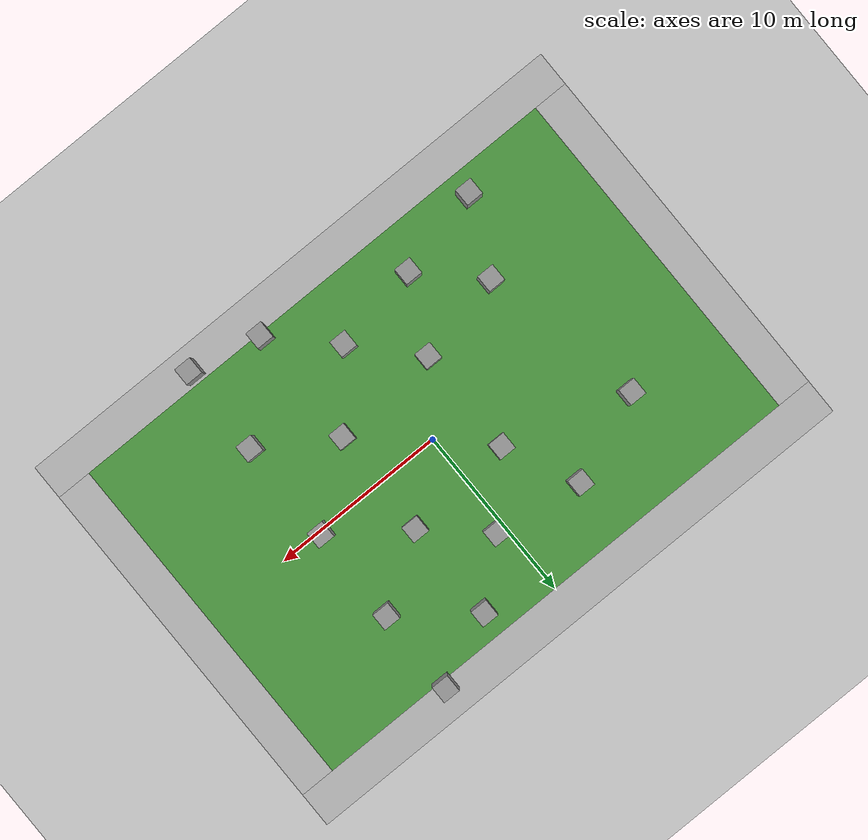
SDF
<sdf version="1.6">
 <world name="default">
  <light name="sun" type="directional">
   <pose>0 0 10 0 -0 0</pose>
   <diffuse>0.8 0.8 0.8 1</diffuse>
   <specular>0.2 0.2 0.2 1</specular>
   <attenuation>
    <range>1000</range>
    <constant>0.9</constant>
    <linear>0.01</linear>
    <quadratic>0.001</quadratic>
   </attenuation>
   <direction>-0.5 0.1 -0.9</direction>
  </light>
  <model name="ground_plane">
   <static>1</static>
   <link name="link">
    <collision name="collision">
     <geometry><plane><normal>0 0 1</normal><size>100 100</size></plane></geometry>
     <surface>
      <contact><collide_bitmask>65535</collide_bitmask></contact>
      <friction><ode><mu>100</mu><mu2>50</mu2></ode></friction>
     </surface>
    </collision>
    <visual name="visual">
     <cast_shadows>0</cast_shadows>
     <geometry><plane><normal>0 0 1</normal><size>100 100</size></plane></geometry>
     <material>
      <script><uri>file://media/materials/scripts/gazebo.material</uri><name>Gazebo/Grey</name></script>
     </material>
    </visual>
   </link>
  </model>
  <gravity>0 0 -9.8</gravity>
  <magnetic_field>6e-06 2.3e-05 -4.2e-05</magnetic_field>
  <atmosphere type="adiabatic"/>
  <physics name="default_physics" default="0" type="ode">
   <max_step_size>0.001</max_step_size>
   <real_time_factor>1</real_time_factor>
   <real_time_update_rate>1000</real_time_update_rate>
  </physics>
  <scene><ambient>0.4 0.4 0.4 1</ambient><background>0.7 0.7 0.7 1</background><shadows>1</shadows></scene>
  <audio><device>default</device></audio>
  <spherical_coordinates>
   <surface_model>EARTH_WGS84</surface_model>
   <latitude_deg>0</latitude_deg>
   <longitude_deg>0</longitude_deg>
   <elevation>0</elevation>
   <heading_deg>0</heading_deg>
  </spherical_coordinates>
  <model name="robocup_3d_field">
   <static>1</static>
   <link name="field">
    <pose>0 0 0.01 0 -0 0</pose>
    <collision name="collision">
     <geometry><plane><normal>0 0 1</normal><size>30 20</size></plane></geometry>
     <surface><friction><ode><mu>100</mu><mu2>50</mu2></ode></friction></surface>
    </collision>
    <visual name="base1">
     <pose>0 11 0.001 0 -0 0</pose>
     <cast_shadows>0</cast_shadows>
     <geometry><plane><normal>0 0 1</normal><size>34 2</size></plane></geometry>
     <material>
      <script>
       <uri>model://robocup_3Dsim_field/materials/scripts/</uri>
       <uri>model://robocup_3Dsim_field/materials/textures/</uri>
       <name>RoboCup/FieldBorder</name>
      </script>
     </material>
    </visual>
    <visual name="base2">
     <pose>0 -11 0.001 0 -0 0</pose>
     <cast_shadows>0</cast_shadows>
     <geometry><plane><normal>0 0 1</normal><size>34 2</size></plane></geometry>
     <material>
      <script>
       <uri>model://robocup_3Dsim_field/materials/scripts/</uri>
       <uri>model://robocup_3Dsim_field/materials/textures/</uri>
       <name>RoboCup/FieldBorder</name>
      </script>
     </material>
    </visual>
    <visual name="base3">
     <pose>16 0 0.001 0 -0 0</pose>
     <cast_shadows>0</cast_shadows>
     <geometry><plane><normal>0 0 1</normal><size>2 20</size></plane></geometry>
     <material>
      <script>
       <uri>model://robocup_3Dsim_field/materials/scripts/</uri>
       <uri>model://robocup_3Dsim_field/materials/textures/</uri>
       <name>RoboCup/FieldBorder</name>
      </script>
     </material>
    </visual>
    <visual name="base4">
     <pose>-16 0 0.001 0 -0 0</pose>
     <cast_shadows>0</cast_shadows>
     <geometry><plane><normal>0 0 1</normal><size>2 20</size></plane></geometry>
     <material>
      <script>
       <uri>model://robocup_3Dsim_field/materials/scripts/</uri>
       <uri>model://robocup_3Dsim_field/materials/textures/</uri>
       <name>RoboCup/FieldBorder</name>
      </script>
     </material>
    </visual>
    <visual name="carpet">
     <cast_shadows>0</cast_shadows>
     <geometry><plane><normal>0 0 1</normal><size>30 20</size></plane></geometry>
     <material>
      <script>
       <uri>model://robocup_3Dsim_field/materials/scripts/</uri>
       <uri>model://robocup_3Dsim_field/materials/textures/</uri>
       <name>RoboCup/Grass</name>
      </script>
     </material>
    </visual>
   </link>
   <pose>-0.041127 0.019225 0 0 -0 0</pose>
  </model>
  <model name="unit_box_1_clone">
   <pose>7.54441 0.128178 0.51 0 -0 0</pose>
   <link name="link">
    <inertial>
     <mass>1</mass>
     <inertia>
      <ixx>0.166667</ixx>
      <ixy>0</ixy>
      <ixz>0</ixz>
      <iyy>0.166667</iyy>
      <iyz>0</iyz>
      <izz>0.166667</izz>
     </inertia>
    </inertial>
    <collision name="collision"><geometry><box><size>1 1 1</size></box></geometry></collision>
    <visual name="visual">
     <geometry><box><size>1 1 1</size></box></geometry>
     <material>
      <script><name>Gazebo/Grey</name><uri>file://media/materials/scripts/gazebo.material</uri></script>
     </material>
    </visual>
   </link>
  </model>
  <model name="unit_box_1_clone_clone">
   <pose>7.56423 -5.5976 0.51 0 -0 0</pose>
   <link name="link">
    <inertial>
     <mass>1</mass>
     <inertia>
      <ixx>0.166667</ixx>
      <ixy>0</ixy>
      <ixz>0</ixz>
      <iyy>0.166667</iyy>
      <iyz>0</iyz>
      <izz>0.166667</izz>
     </inertia>
    </inertial>
    <collision name="collision"><geometry><box><size>1 1 1</size></box></geometry></collision>
    <visual name="visual">
     <geometry><box><size>1 1 1</size></box></geometry>
     <material>
      <script><name>Gazebo/Grey</name><uri>file://media/materials/scripts/gazebo.material</uri></script>
     </material>
    </visual>
   </link>
  </model>
  <model name="unit_box_1_clone_clone_0">
   <pose>7.58658 5.4978 0.51 0 -0 0</pose>
   <link name="link">
    <inertial>
     <mass>1</mass>
     <inertia>
      <ixx>0.166667</ixx>
      <ixy>0</ixy>
      <ixz>0</ixz>
      <iyy>0.166667</iyy>
      <iyz>0</iyz>
      <izz>0.166667</izz>
     </inertia>
    </inertial>
    <collision name="collision"><geometry><box><size>1 1 1</size></box></geometry></collision>
    <visual name="visual">
     <geometry><box><size>1 1 1</size></box></geometry>
     <material>
      <script><name>Gazebo/Grey</name><uri>file://media/materials/scripts/gazebo.material</uri></script>
     </material>
    </visual>
   </link>
  </model>
  <model name="unit_box_1_clone_clone_1">
   <pose>3.60963 2.97993 0.51 0 -0 0</pose>
   <link name="link">
    <inertial>
     <mass>1</mass>
     <inertia>
      <ixx>0.166667</ixx>
      <ixy>0</ixy>
      <ixz>0</ixz>
      <iyy>0.166667</iyy>
      <iyz>0</iyz>
      <izz>0.166667</izz>
     </inertia>
    </inertial>
    <collision name="collision"><geometry><box><size>1 1 1</size></box></geometry></collision>
    <visual name="visual">
     <geometry><box><size>1 1 1</size></box></geometry>
     <material>
      <script><name>Gazebo/Grey</name><uri>file://media/materials/scripts/gazebo.material</uri></script>
     </material>
    </visual>
   </link>
  </model>
  <model name="unit_box_1_clone_clone_2">
   <pose>3.51375 -3.06121 0.51 0 -0 0</pose>
   <link name="link">
    <inertial>
     <mass>1</mass>
     <inertia>
      <ixx>0.166667</ixx>
      <ixy>0</ixy>
      <ixz>0</ixz>
      <iyy>0.166667</iyy>
      <iyz>0</iyz>
      <izz>0.166667</izz>
     </inertia>
    </inertial>
    <collision name="collision"><geometry><box><size>1 1 1</size></box></geometry></collision>
    <visual name="visual">
     <geometry><box><size>1 1 1</size></box></geometry>
     <material>
      <script><name>Gazebo/Grey</name><uri>file://media/materials/scripts/gazebo.material</uri></script>
     </material>
    </visual>
   </link>
  </model>
  <model name="unit_box_1_clone_clone_3">
   <pose>3.49227 -9.76442 0.51 0 -0 0</pose>
   <link name="link">
    <inertial>
     <mass>1</mass>
     <inertia>
      <ixx>0.166667</ixx>
      <ixy>0</ixy>
      <ixz>0</ixz>
      <iyy>0.166667</iyy>
      <iyz>0</iyz>
      <izz>0.166667</izz>
     </inertia>
    </inertial>
    <collision name="collision"><geometry><box><size>1 1 1</size></box></geometry></collision>
    <visual name="visual">
     <geometry><box><size>1 1 1</size></box></geometry>
     <material>
      <script><name>Gazebo/Grey</name><uri>file://media/materials/scripts/gazebo.material</uri></script>
     </material>
    </visual>
   </link>
  </model>
  <model name="unit_box_1_clone_clone_4">
   <pose>7.47591 -10.6408 0.51 0 -0 0</pose>
   <link name="link">
    <inertial>
     <mass>1</mass>
     <inertia>
      <ixx>0.166667</ixx>
      <ixy>0</ixy>
      <ixz>0</ixz>
      <iyy>0.166667</iyy>
      <iyz>0</iyz>
      <izz>0.166667</izz>
     </inertia>
    </inertial>
    <collision name="collision"><geometry><box><size>1 1 1</size></box></geometry></collision>
    <visual name="visual">
     <geometry><box><size>1 1 1</size></box></geometry>
     <material>
      <script><name>Gazebo/Grey</name><uri>file://media/materials/scripts/gazebo.material</uri></script>
     </material>
    </visual>
   </link>
  </model>
  <model name="unit_box_1_clone_clone_5">
   <pose>0.449641 -6.70784 0.51 0 -0 0</pose>
   <link name="link">
    <inertial>
     <mass>1</mass>
     <inertia>
      <ixx>0.166667</ixx>
      <ixy>0</ixy>
      <ixz>0</ixz>
      <iyy>0.166667</iyy>
      <iyz>0</iyz>
      <izz>0.166667</izz>
     </inertia>
    </inertial>
    <collision name="collision"><geometry><box><size>1 1 1</size></box></geometry></collision>
    <visual name="visual">
     <geometry><box><size>1 1 1</size></box></geometry>
     <material>
      <script><name>Gazebo/Grey</name><uri>file://media/materials/scripts/gazebo.material</uri></script>
     </material>
    </visual>
   </link>
  </model>
  <model name="unit_box_1_clone_clone_6">
   <pose>0.51545 5.78423 0.51 0 -0 0</pose>
   <link name="link">
    <inertial>
     <mass>1</mass>
     <inertia>
      <ixx>0.166667</ixx>
      <ixy>0</ixy>
      <ixz>0</ixz>
      <iyy>0.166667</iyy>
      <iyz>0</iyz>
      <izz>0.166667</izz>
     </inertia>
    </inertial>
    <collision name="collision"><geometry><box><size>1 1 1</size></box></geometry></collision>
    <visual name="visual">
     <geometry><box><size>1 1 1</size></box></geometry>
     <material>
      <script><name>Gazebo/Grey</name><uri>file://media/materials/scripts/gazebo.material</uri></script>
     </material>
    </visual>
   </link>
  </model>
  <model name="unit_box_1_clone_clone_7">
   <pose>3.60143 8.56053 0.51 0 -0 0</pose>
   <link name="link">
    <inertial>
     <mass>1</mass>
     <inertia>
      <ixx>0.166667</ixx>
      <ixy>0</ixy>
      <ixz>0</ixz>
      <iyy>0.166667</iyy>
      <iyz>0</iyz>
      <izz>0.166667</izz>
     </inertia>
    </inertial>
    <collision name="collision"><geometry><box><size>1 1 1</size></box></geometry></collision>
    <visual name="visual">
     <geometry><box><size>1 1 1</size></box></geometry>
     <material>
      <script><name>Gazebo/Grey</name><uri>file://media/materials/scripts/gazebo.material</uri></script>
     </material>
    </visual>
   </link>
  </model>
  <model name="unit_box_1_clone_clone_8">
   <pose>7.58201 10.2963 0.51 0 -0 0</pose>
   <link name="link">
    <inertial>
     <mass>1</mass>
     <inertia>
      <ixx>0.166667</ixx>
      <ixy>0</ixy>
      <ixz>0</ixz>
      <iyy>0.166667</iyy>
      <iyz>0</iyz>
      <izz>0.166667</izz>
     </inertia>
    </inertial>
    <collision name="collision"><geometry><box><size>1 1 1</size></box></geometry></collision>
    <visual name="visual">
     <geometry><box><size>1 1 1</size></box></geometry>
     <material>
      <script><name>Gazebo/Grey</name><uri>file://media/materials/scripts/gazebo.material</uri></script>
     </material>
    </visual>
   </link>
  </model>
  <model name="unit_box_1_clone_clone_9">
   <pose>-2.52387 -3.4785 0.51 0 -0 0</pose>
   <link name="link">
    <inertial>
     <mass>1</mass>
     <inertia>
      <ixx>0.166667</ixx>
      <ixy>0</ixy>
      <ixz>0</ixz>
      <iyy>0.166667</iyy>
      <iyz>0</iyz>
      <izz>0.166667</izz>
     </inertia>
    </inertial>
    <collision name="collision"><geometry><box><size>1 1 1</size></box></geometry></collision>
    <visual name="visual">
     <geometry><box><size>1 1 1</size></box></geometry>
     <material>
      <script><name>Gazebo/Grey</name><uri>file://media/materials/scripts/gazebo.material</uri></script>
     </material>
    </visual>
   </link>
  </model>
  <model name="unit_box_1_clone_clone_10">
   <pose>-2.51043 2.49315 0.51 0 -0 0</pose>
   <link name="link">
    <inertial>
     <mass>1</mass>
     <inertia>
      <ixx>0.166667</ixx>
      <ixy>0</ixy>
      <ixz>0</ixz>
      <iyy>0.166667</iyy>
      <iyz>0</iyz>
      <izz>0.166667</izz>
     </inertia>
    </inertial>
    <collision name="collision"><geometry><box><size>1 1 1</size></box></geometry></collision>
    <visual name="visual">
     <geometry><box><size>1 1 1</size></box></geometry>
     <material>
      <script><name>Gazebo/Grey</name><uri>file://media/materials/scripts/gazebo.material</uri></script>
     </material>
    </visual>
   </link>
  </model>
  <model name="unit_box_1_clone_clone_11">
   <pose>-4.46397 6.50649 0.51 0 -0 0</pose>
   <link name="link">
    <inertial>
     <mass>1</mass>
     <inertia>
      <ixx>0.166667</ixx>
      <ixy>0</ixy>
      <ixz>0</ixz>
      <iyy>0.166667</iyy>
      <iyz>0</iyz>
      <izz>0.166667</izz>
     </inertia>
    </inertial>
    <collision name="collision"><geometry><box><size>1 1 1</size></box></geometry></collision>
    <visual name="visual">
     <geometry><box><size>1 1 1</size></box></geometry>
     <material>
      <script><name>Gazebo/Grey</name><uri>file://media/materials/scripts/gazebo.material</uri></script>
     </material>
    </visual>
   </link>
  </model>
  <model name="unit_box_1_clone_clone_12">
   <pose>-4.47394 -7.48283 0.51 0 -0 0</pose>
   <link name="link">
    <inertial>
     <mass>1</mass>
     <inertia>
      <ixx>0.166667</ixx>
      <ixy>0</ixy>
      <ixz>0</ixz>
      <iyy>0.166667</iyy>
      <iyz>0</iyz>
      <izz>0.166667</izz>
     </inertia>
    </inertial>
    <collision name="collision"><geometry><box><size>1 1 1</size></box></geometry></collision>
    <visual name="visual">
     <geometry><box><size>1 1 1</size></box></geometry>
     <material>
      <script><name>Gazebo/Grey</name><uri>file://media/materials/scripts/gazebo.material</uri></script>
     </material>
    </visual>
   </link>
  </model>
  <model name="unit_box_1_clone_clone_13">
   <pose>-7.5302 -4.51875 0.51 0 -0 0</pose>
   <link name="link">
    <inertial>
     <mass>1</mass>
     <inertia>
      <ixx>0.166667</ixx>
      <ixy>0</ixy>
      <ixz>0</ixz>
      <iyy>0.166667</iyy>
      <iyz>0</iyz>
      <izz>0.166667</izz>
     </inertia>
    </inertial>
    <collision name="collision"><geometry><box><size>1 1 1</size></box></geometry></collision>
    <visual name="visual">
     <geometry><box><size>1 1 1</size></box></geometry>
     <material>
      <script><name>Gazebo/Grey</name><uri>file://media/materials/scripts/gazebo.material</uri></script>
     </material>
    </visual>
   </link>
  </model>
  <model name="unit_box_1_clone_clone_14">
   <pose>-9.45115 -8.65548 0.51 0 -0 0</pose>
   <link name="link">
    <inertial>
     <mass>1</mass>
     <inertia>
      <ixx>0.166667</ixx>
      <ixy>0</ixy>
      <ixz>0</ixz>
      <iyy>0.166667</iyy>
      <iyz>0</iyz>
      <izz>0.166667</izz>
     </inertia>
    </inertial>
    <collision name="collision"><geometry><box><size>1 1 1</size></box></geometry></collision>
    <visual name="visual">
     <geometry><box><size>1 1 1</size></box></geometry>
     <material>
      <script><name>Gazebo/Grey</name><uri>file://media/materials/scripts/gazebo.material</uri></script>
     </material>
    </visual>
   </link>
  </model>
  <model name="unit_box_1_clone_clone_15">
   <pose>-9.44432 4.56059 0.51 0 -0 0</pose>
   <link name="link">
    <inertial>
     <mass>1</mass>
     <inertia>
      <ixx>0.166667</ixx>
      <ixy>0</ixy>
      <ixz>0</ixz>
      <iyy>0.166667</iyy>
      <iyz>0</iyz>
      <izz>0.166667</izz>
     </inertia>
    </inertial>
    <collision name="collision"><geometry><box><size>1 1 1</size></box></geometry></collision>
    <visual name="visual">
     <geometry><box><size>1 1 1</size></box></geometry>
     <material>
      <script><name>Gazebo/Grey</name><uri>file://media/materials/scripts/gazebo.material</uri></script>
     </material>
    </visual>
   </link>
  </model>
 </world>
</sdf>
